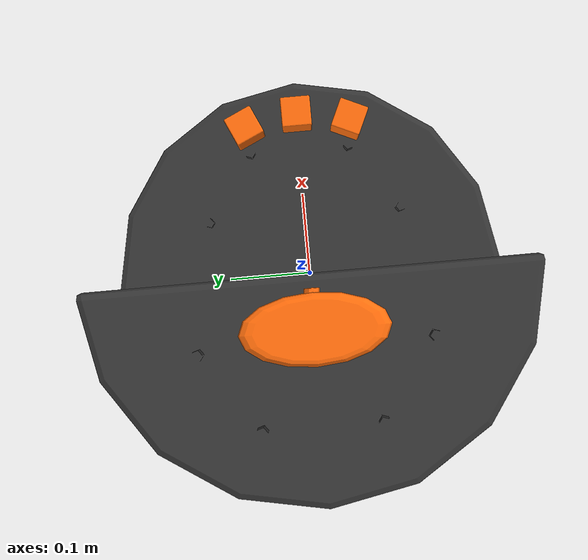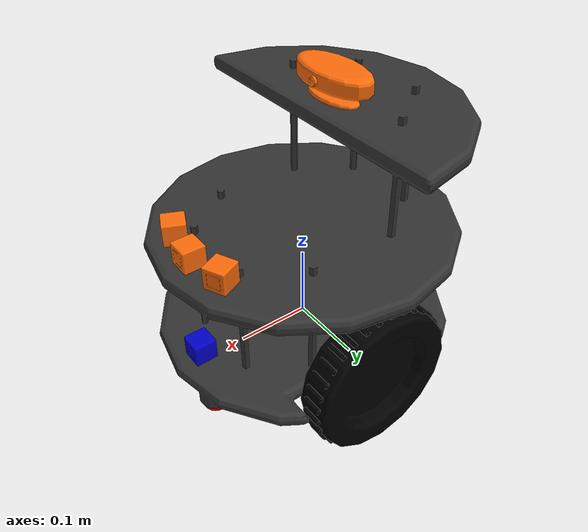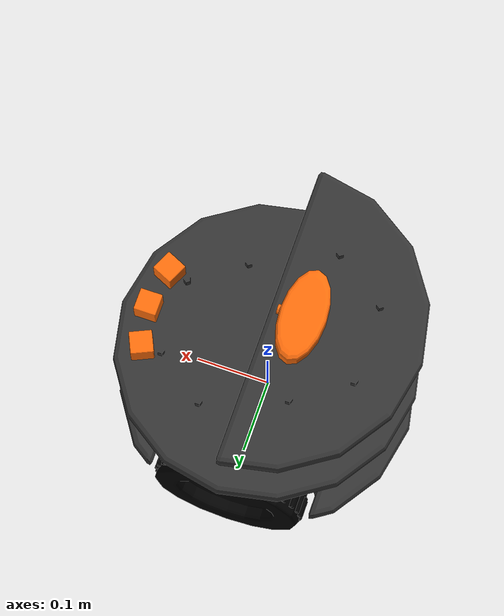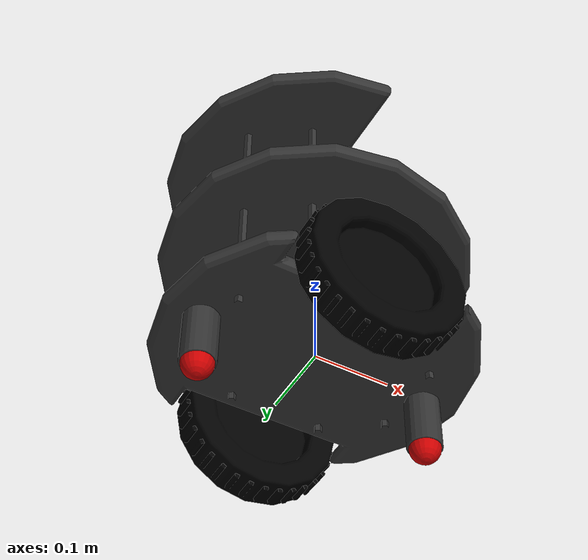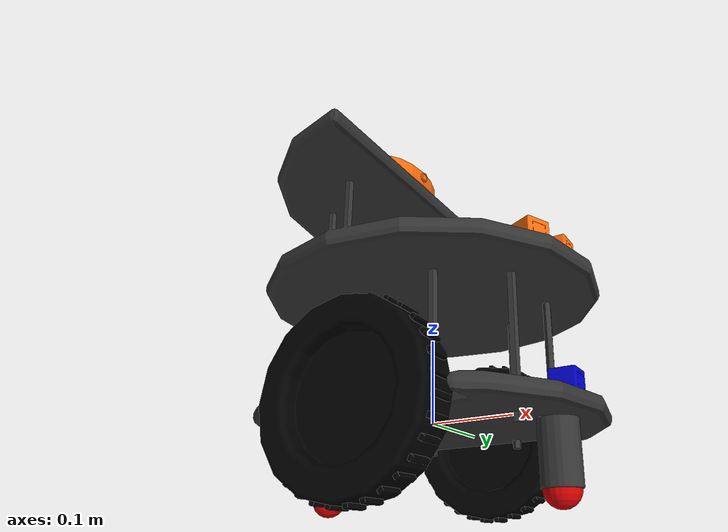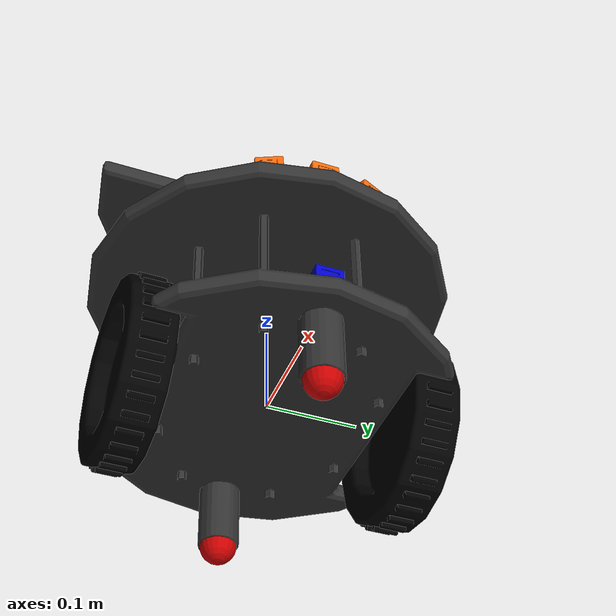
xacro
<?xml version="1.0"?>
<robot xmlns:xacro="http://www.ros.org/wiki/xacro" name="rhoa">

	<!-- Pour plus d'informations sur les fichiers .xacro, voir le lien ci-dessous : -->
	<!-- http://wiki.ros.org/urdf/Tutorials/Using%20Xacro%20to%20Clean%20Up%20a%20URDF%20File  -->

	<!-- Fichier fait notamment grace au lien suivant : -->
	<!-- https://www.generationrobots.com/blog/en/2015/02/robotic-simulation-scenarios-with-gazebo-and-ros/#SetupWorkspace -->

	<!-- INCLUDE -->
    <xacro:include filename="$(find rhoa_sim)/robots/macros/chassis.xacro" />
	<xacro:include filename="$(find rhoa_sim)/robots/macros/wheel.xacro" />
	<xacro:include filename="$(find rhoa_sim)/robots/macros/caster.xacro" />
	<xacro:include filename="$(find rhoa_sim)/robots/macros/camera.xacro" />
	<xacro:include filename="$(find rhoa_sim)/robots/macros/proximitySensor.xacro" />
	<xacro:include filename="$(find rhoa_sim)/robots/macros/lidar.xacro" />
	<xacro:include filename="$(find rhoa_sim)/robots/macros/diffDrive.xacro" />

	<xacro:include filename="$(find rhoa_sim)/materials/materials.xacro" />

	<!-- ==================================  ROBOTS PARAMETERS ================================= -->
	<xacro:property name="robot_namespace"          value="" />

	<!-- = CHASSIS = -->
	<xacro:property name="chassis_mesh"             value="package://rhoa_sim/meshes/chassis.dae" />
	<xacro:property name="chassis_material"         value="grey" />
	<xacro:property name="chassis_mass"             value="10" />
	<xacro:property name="chassis_length"           value="0.3" />
	<xacro:property name="chassis_radius"           value="0.2" />

	<!-- = WHEEL = -->
	<xacro:property name="wheel_mesh"               value="package://rhoa_sim/meshes/wheel.dae" />
	<xacro:property name="wheel_material"           value="black" />
	<xacro:property name="wheel_mass"               value="1" />
	<xacro:property name="wheel_length"             value="0.05" />
	<xacro:property name="wheel_radius"             value="0.1" />
	<xacro:property name="wheel_damping"            value="0.0" />

    <!-- Left wheel -->
	<xacro:property name="left_wheel_offset"        value="0.0 0.15 0.0" />

    <!-- Right wheel -->
	<xacro:property name="right_wheel_offset"       value="0.0 -0.15 0.0" />

    <!-- CRITICAL -->
    <!-- N'oubliez pas de specifier la distance qui separe les deux roues motrices -->
	<xacro:property name="wheel_separation"         value="0.30" />

	<!-- = CASTER = -->
	<xacro:property name="caster_mass"              value="0.1" />
	<xacro:property name="caster_radius"            value="0.02" />
	<xacro:property name="caster_material"          value="red" />

    <!-- Front caster -->
	<xacro:property name="front_caster_offset"      value="0.15 0.0 -0.08" />

    <!-- Back caster -->
	<xacro:property name="back_caster_offset"       value="-0.15 0.0 -0.08" />

	<!-- = CAMERA = -->
	<xacro:property name="camera_mesh"              value="package://rhoa_sim/meshes/camera.dae" />
	<xacro:property name="camera_material"          value="orange" />
	<xacro:property name="camera_mass"              value="0.1" />
	<xacro:property name="camera_size_x"            value="0.06" />
	<xacro:property name="camera_size_y"            value="0.11" />
	<xacro:property name="camera_size_z"            value="0.04" />
	<xacro:property name="camera_optic_offset"      value="0.032895 0.0 0.022207" />

	<!-- camera settings -->
	<xacro:property name="camera_visualize"         value="false" />
	<xacro:property name="camera_update_rate"       value="30.0" />
	<xacro:property name="camera_frame_rate"        value="30.0" />
	<xacro:property name="camera_horizontal_fov"    value="2" />
	<xacro:property name="camera_image_size_y"      value="1920" />
	<xacro:property name="camera_image_size_z"      value="1080" />
	<xacro:property name="camera_image_format"      value="R8G8B8" />
	<xacro:property name="camera_clip_near"         value="0.02" />
	<xacro:property name="camera_clip_far"          value="300" />
	<xacro:property name="camera_noise_type"        value="gaussian" />
	<xacro:property name="camera_noise_mean"        value="0.0" />
	<xacro:property name="camera_noise_stddev"      value="0.007" />
	<xacro:property name="camera_name"              value="camera" />
	<xacro:property name="camera_image_topic_name"  value="image_raw" />
	<xacro:property name="camera_info_topic_name"   value="camera_info" />

    <!-- Front camera -->
	<xacro:property name="front_camera_offset"    value="-0.044885 0.0 0.315" />
	<xacro:property name="front_camera_rpy"        value="0.0 0.0 0.0" />

	<!-- = PROXIMITY SENSOR = -->
	<xacro:property name="proximity_sensor_mesh"              value="package://rhoa_sim/meshes/sensor.dae" />
	<xacro:property name="proximity_sensor_material"          value="orange" />
	<xacro:property name="proximity_sensor_mass"              value="0.1" />
	<xacro:property name="proximity_sensor_size_x"            value="0.03" />
	<xacro:property name="proximity_sensor_size_y"            value="0.03" />
	<xacro:property name="proximity_sensor_size_z"            value="0.03" />
	<xacro:property name="proximity_sensor_optic_offset"      value="0.014 0 0.014971" />

	<!-- proximity sensor settings -->
	<xacro:property name="proximity_sensor_visualize"         value="true" />
	<xacro:property name="proximity_sensor_update_rate"       value="40" />
	<xacro:property name="proximity_sensor_scan_sample"       value="40" />
	<xacro:property name="proximity_sensor_scan_resolution"   value="1" />
	<xacro:property name="proximity_sensor_scan_min_angle"    value="0.00872665" />
	<xacro:property name="proximity_sensor_scan_max_angle"    value="-0.00872665" />
	<xacro:property name="proximity_sensor_range_min"         value="0.06" />
	<xacro:property name="proximity_sensor_range_max"         value="0.15" />
	<xacro:property name="proximity_sensor_range_resolution"  value="0.01" />
	<xacro:property name="proximity_sensor_noise_type"        value="gaussian" />
	<xacro:property name="proximity_sensor_noise_mean"        value="0.0" />
	<xacro:property name="proximity_sensor_noise_stddev"      value="0.01" />
	<xacro:property name="proximity_sensor_topic_name"        value="proximity_sensor" />
	<xacro:property name="proximity_sensor_noise_stddev"      value="0.01" />

	<!-- Front proximity sensor -->
	<xacro:property name="front_proximity_sensor_offset"      value="0.16265 0.0 0.16" />
	<xacro:property name="front_proximity_sensor_rpy"         value="0 0 0" />

	<!-- Left proximity sensor -->
	<xacro:property name="left_proximity_sensor_offset"       value="0.15282 0.053393 0.16" />
	<xacro:property name="left_proximity_sensor_rpy"          value="0 0 0.42738" />

	<!-- Right proximity sensor -->
	<xacro:property name="right_proximity_sensor_offset"      value="0.15282 -0.053393 0.16" />
	<xacro:property name="right_proximity_sensor_rpy"         value="0 0 -0.42738" />

	<!-- = LIDAR Settings = -->
	<xacro:property name="lidar_mesh"             value="package://rhoa_sim/meshes/sensor.dae" />
	<xacro:property name="lidar_material"         value="blue" />
	<xacro:property name="lidar_mass"             value="0.1" />
	<xacro:property name="lidar_size_x"           value="0.03" />
	<xacro:property name="lidar_size_y"           value="0.03" />
	<xacro:property name="lidar_size_z"           value="0.03" />
	<xacro:property name="lidar_optic_offset"     value="0.014 0 0.014971" />

	<xacro:property name="lidar_visualize"        value="false" />
	<xacro:property name="lidar_update_rate"      value="40" />
	<xacro:property name="lidar_scan_sample"      value="720" />
	<xacro:property name="lidar_scan_resolution"  value="1" />
	<xacro:property name="lidar_scan_min_angle"   value="${pi/2}" />
	<xacro:property name="lidar_scan_max_angle"   value="-${pi/2}" />
	<xacro:property name="lidar_range_min"        value="0.10" />
	<xacro:property name="lidar_range_max"        value="30.0" />
	<xacro:property name="lidar_range_resolution" value="0.01" />
	<xacro:property name="lidar_noise_type"       value="gaussian" />
	<xacro:property name="lidar_noise_mean"       value="0.0" />
	<xacro:property name="lidar_noise_stddev"     value="0.01" />
    <xacro:property name="lidar_topic_name"       value="lidar" />
	<xacro:property name="lidar_noise_stddev"     value="0.01" />

    <!-- Front LiDAR -->
	<xacro:property name="front_lidar_offset"     value="0.16265 0 0.01" />
	<xacro:property name="front_lidar_rpy"        value="0.0 0.0 0.0" />

	<!-- DRIVE -->
	<xacro:property name="drive_update_rate"       value="100" />
	<xacro:property name="drive_torque"            value="0.1" />
	<xacro:property name="command_topic"           value="cmd_vel" />
	<xacro:property name="odometry_topic"          value="odom" />

    <!-- ROS/Gazebo integration -->
	<gazebo>
		<plugin name="gazebo_ros_control" filename="libgazebo_ros_control.so">
		</plugin>
	</gazebo>

	<!-- ==================== INSTANCIATION DU ROBOT  ====================== -->

	<xacro:m_chassis_cylinder />

    <xacro:m_wheel prefix="right" offset="${right_wheel_offset}" />
    <xacro:m_wheel prefix="left" offset="${left_wheel_offset}" />

    <xacro:m_caster prefix="front" offset="${front_caster_offset}" />
	<xacro:m_caster prefix="back"  offset="${back_caster_offset}" />

    <xacro:m_camera prefix="front" offset="${front_camera_offset}" rpy="${front_camera_rpy}"/>

    <xacro:m_proximity_sensor prefix="front"  offset="${front_proximity_sensor_offset}" rpy="${front_proximity_sensor_rpy}"/>
    <xacro:m_proximity_sensor prefix="right"  offset="${right_proximity_sensor_offset}" rpy="${right_proximity_sensor_rpy}"/>
    <xacro:m_proximity_sensor prefix="left"  offset="${left_proximity_sensor_offset}" rpy="${left_proximity_sensor_rpy}"/>

    <xacro:m_lidar prefix="front"  offset="${front_lidar_offset}" rpy="${front_lidar_rpy}"/>

	<xacro:m_differential_drive />

</robot>

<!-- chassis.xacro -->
<robot xmlns:xacro="http://www.ros.org/wiki/xacro" name="rhoa">
	<!-- INCLUDE -->
    <xacro:include filename="$(find rhoa_sim)/robots/macros/inertia.xacro" />

    <!-- FICHIER MACRO -->
    <!-- Ce fichier definit des macros pour instancier un chassis -->

	<!-- ====================  CHASSIS MACRO  ====================== -->

    <!-- NOTE:-->

    <!-- En fonction de la forme de votre chassis, choisissez la bonne macro -->
    <!-- Deux macros sont disponibles pour le chassis-->
    <!--    * Une pour un chassis cylindrique, comme le robot-->
    <!--    * Une pour un chassis rectangulaire-->
    <!-- Il ne peut y avoir qu'un seul chassis par robot ! -->

	<!-- CHASSIS CYLINDRIQUE-->

    <!-- PARAMETRES-->

    <!-- A COPIER UNE FOIS DANS LE FICHIER -->

    <!-- MACRO -->
	<xacro:macro name="m_chassis_cylinder" >
		<link name="base_footprint" />

		<joint name="base_joint" type="fixed">
			<parent link="base_footprint"/>
			<child link="chassis"/>
			<origin rpy="0 0 0" xyz="0 0 0"/>
			<axis xyz="0 0 0" />
		</joint>

		<link name="chassis">
			<visual>
				<geometry>
					<mesh filename="${chassis_mesh}" />
				</geometry>
				<material name="${chassis_material}" />
			</visual>
			<collision>
				<geometry>
					<cylinder length="${chassis_length}" radius="${chassis_radius}" />
				</geometry>
				<origin rpy="0 0 0" xyz="0 0 ${chassis_length/2}"/>
			</collision>
			<inertial>
				<origin xyz="0 0 0" rpy="0 0 0" />
				<pose xyz="0 0 ${chassis_length/2}" rpy="0 0 0" />
				<mass value="${chassis_mass}" />
				<xacro:box_inertia m="${chassis_mass}" x="${chassis_radius}" y="${chassis_radius}" z="${chassis_length}"/>
			</inertial>
		</link>
		<gazebo reference="chassis">
			<material>Gazebo/Grey</material>
		</gazebo>
	</xacro:macro>

	<!-- CHASSIS RECTANGULAIRE-->

    <!-- PARAMETRES-->

    <!-- A COPIER UNE FOIS DANS LE FICHIER -->

    <!-- MACRO -->
	<xacro:macro name="m_chassis_box" >
		<link name="base_footprint" />

		<joint name="base_joint" type="fixed">
			<parent link="base_footprint"/>
			<child link="chassis"/>
			<origin rpy="0 0 0" xyz="0 0 0"/>
			<axis xyz="0 0 0" />
		</joint>

		<link name="chassis">
			<visual>
				<geometry>
					<mesh filename="${chassis_mesh}" />
				</geometry>
				<material name="${chassis_material}" />
			</visual>
			<collision>
				<geometry>
					<box size="${chassis_size_x} ${chassis_size_y} ${chassis_size_z}"/>
				</geometry>
				<origin rpy="0 0 0" xyz="0 0 ${chassis_length/2}"/>
			</collision>
			<inertial>
				<origin xyz="0 0 0" rpy="0 0 0" />
				<pose xyz="0 0 ${chassis_length/2}" rpy="0 0 0" />
				<mass value="${chassis_mass}" />
				<xacro:box_inertia m="${chassis_mass}" x="${chassis_size_x}" y="${chassis_size_y}" z="${chassis_size_z}"/>
			</inertial>
		</link>
		<gazebo reference="chassis">
			<material>Gazebo/Grey</material>
		</gazebo>
	</xacro:macro>

</robot>

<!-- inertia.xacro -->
<robot xmlns:xacro="http://www.ros.org/wiki/xacro" name="rhoa">
    <!-- FICHIER MACRO -->
    <!-- Ce fichier definit des macros pour calculer les moments d'inertie-->

	<!-- ==================================  INERTIA MACROS  ================================= -->
	<xacro:macro name="cylinder_inertia" params="m r h">
		<inertia  ixx="${m*(3*r*r+h*h)/12}" ixy = "0" ixz = "0"
			iyy="${m*(3*r*r+h*h)/12}" iyz = "0"
			izz="${m*r*r/2}" />
	</xacro:macro>

	<xacro:macro name="box_inertia" params="m x y z">
		<inertia  ixx="${m*(y*y+z*z)/12}" ixy = "0" ixz = "0"
			iyy="${m*(x*x+z*z)/12}" iyz = "0"
			izz="${m*(x*x+z*z)/12}" />
	</xacro:macro>

	<xacro:macro name="sphere_inertia" params="m r">
		<inertia  ixx="${2*m*r*r/5}" ixy = "0" ixz = "0"
			iyy="${2*m*r*r/5}" iyz = "0"
			izz="${2*m*r*r/5}" />
	</xacro:macro>

	<xacro:macro name="default_inertia" params="mass">
		<mass value="${mass}" />
		<inertia ixx="1.0" ixy="0.0" ixz="0.0"
			iyy="1.0" iyz="0.0"
			izz="1.0" />
	</xacro:macro>

</robot>

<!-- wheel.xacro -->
<robot xmlns:xacro="http://www.ros.org/wiki/xacro" name="rhoa">
	<!-- INCLUDE -->
	<xacro:include filename="$(find rhoa_sim)/robots/macros/inertia.xacro" />

    <!-- FICHIER MACRO -->
    <!-- Ce fichier definit des macros pour instancier une roue (ATTENTION: IL NE PEUT Y AVOIR QUE DEUX ROUES MOTRICES)  -->

  <!-- ====================  WHEEL MACRO  ====================== -->

    <!-- NOTE:-->
    <!-- Pour les parametres, n'oubliez pas de remplacer $PREFIX par le prefix specifie lors de l'instanciation de la macro -->

    <!-- PARAMETRES-->

    <!-- A COPIER UNE FOIS DANS LE FICHIER -->

    <!-- CRITICAL -->
    <!-- N'oubliez pas de specifier la distance qui separe les deux roues motrices -->

    <!-- A COPIER POUR CHAQUE INSTACIATION, en remplacant $PREFIX par des valeurs differentes pour chaque instanciation(Par exemple: front, left, ...) -->

	<xacro:macro name="m_wheel" params="prefix offset">
		<link name="${prefix}_wheel">
			<visual>
				<geometry>
					<mesh filename="${wheel_mesh}" />
				</geometry>
				<material name="${wheel_material}" />
			</visual>
			<collision>
				<geometry>
					<cylinder length="${wheel_length}" radius="${wheel_radius}" />
				</geometry>
				<origin rpy="1.5708 0 0" xyz="0 0 0"/>
			</collision>
			<inertial>
				<origin rpy="1.5708 0 0" xyz="0 0 0"/>
				<mass value="${wheel_mass}" />
				<xacro:cylinder_inertia m="${wheel_mass}" r="${wheel_radius}" h="${wheel_length}"/>
			</inertial>
		</link>
		<joint name="${prefix}_wheel_hinge" type="continuous">
			<parent link="chassis" />
			<child link="${prefix}_wheel" />
			<origin rpy="0 0 0" xyz="${offset}"/>
			<axis xyz="0 1 0" />
			<dynamics damping="${wheel_damping}" />
		</joint>
		<transmission name="${prefix}_wheel_transmission">
			<type>transmission_interface/SimpleTransmission</type>
			<joint name="${prefix}_wheel_hinge">
				<hardwareInterface>EffortJointInterface</hardwareInterface>
			</joint>
			<actuator name="${prefix}_wheel_joint_motor">
				<hardwareInterface>EffortJointInterface</hardwareInterface>
				<mechanicalReduction>1</mechanicalReduction>
				<motorTorqueConstant>1</motorTorqueConstant>
			</actuator>
		</transmission>
		<gazebo reference="${prefix}_wheel">
			<mu1 value="1.0"/>
			<mu2 value="1.0"/>
			<kp  value="10000000.0" />
			<kd  value="1.0" />
			<fdir1 value="1 0 0"/>
			<material>Gazebo/Grey</material>
		</gazebo>
	</xacro:macro>

</robot>

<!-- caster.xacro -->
<robot xmlns:xacro="http://www.ros.org/wiki/xacro" name="rhoa">
	<!-- INCLUDE -->
	<xacro:include filename="$(find rhoa_sim)/robots/macros/inertia.xacro" />

    <!-- FICHIER MACRO -->
    <!-- Ce fichier definit des macros pour instancier une roulette (un "caster" en anglais) -->

  <!-- ====================  CASTER MACRO  ====================== -->

    <!-- NOTE:-->
    <!-- Pour les parametres, n'oubliez pas de remplacer $PREFIX par le prefix specifie lors de l'instanciation de la macro -->

    <!-- PARAMETRES-->

    <!-- A COPIER UNE FOIS DANS LE FICHIER -->

    <!-- A COPIER POUR CHAQUE INSTACIATION, en remplacant $PREFIX par des valeurs differentes pour chaque instanciation(Par exemple: front, left, ...) -->

	<xacro:macro name="m_caster" params="prefix offset">
		<link name="${prefix}_caster">
			<visual>
				<geometry>
					<sphere radius="${caster_radius}" />
				</geometry>
				<material name="${caster_material}" />
			</visual>
			<collision>
				<geometry>
					<sphere radius="${caster_radius}" />
				</geometry>
			</collision>
			<inertial>
				<origin rpy="0 0 0" xyz="0 0 0"/>
				<mass value="${caster_mass}" />
				<xacro:sphere_inertia m="${caster_mass}" r="${caster_radius}"/>
			</inertial>
		</link>
		<joint name="${prefix}_caster_fixation" type="fixed">
			<parent link="chassis" />
			<child link="${prefix}_caster" />
			<origin rpy="0 0 0" xyz="${offset}"/>
			<axis xyz="0 0 0" />
		</joint>
		<gazebo reference="${prefix}_caster">
			<mu1 value="0.0" />
			<mu2 value="0.0" />
			<material>Gazebo/Red</material>
		</gazebo>
	</xacro:macro>
</robot>

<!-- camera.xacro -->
<robot xmlns:xacro="http://www.ros.org/wiki/xacro" name="rhoa">
	<!-- INCLUDE -->
	<xacro:include filename="$(find rhoa_sim)/robots/macros/inertia.xacro" />

    <!-- FICHIER MACRO -->
    <!-- Ce fichier definit des macros pour instancier une camera -->

  <!-- ====================  CAMERA MACRO  ====================== -->

    <!-- NOTE:-->
    <!-- Pour les parametres, n'oubliez pas de remplacer $PREFIX par le prefix specifie lors de l'instanciation de la macro -->

    <!-- PARAMETRES-->

    <!-- A COPIER UNE FOIS DANS LE FICHIER -->

    <!-- A COPIER POUR CHAQUE INSTACIATION, en remplacant $PREFIX par des valeurs differentes pour chaque instanciation(Par exemple: front, left, ...) -->

    <!-- MACRO -->
	<xacro:macro name="m_camera" params="prefix offset rpy">
		<link name="${prefix}_camera_anchor" />
		<link name="${prefix}_camera">
			<visual>
				<geometry>
					<mesh filename="${camera_mesh}" />
				</geometry>
				<material name="${camera_material}" />
			</visual>
			<collision>
				<geometry>
					<box size="${camera_size_x} ${camera_size_y} ${camera_size_z}"/>
				</geometry>
                <origin rpy="${rpy}" xyz="0 0 ${camera_size_z/2}"/>
			</collision>
			<inertial>
				<origin xyz="0 0 0" rpy="0 0 0" />
				<mass value="${camera_mass}" />
				<xacro:box_inertia m="${camera_mass}" x="${camera_size_x}"  y="${camera_size_y}" z="${camera_size_z}"/>
			</inertial>
		</link>
		<joint name="${prefix}_camera_fixation" type="fixed">
			<parent link="chassis" />
			<child link="${prefix}_camera" />
			<origin rpy="${rpy}" xyz="${offset}"/>
			<axis xyz="0 0 0" />
		</joint>
		<joint name="${prefix}_camera_optic_fixation" type="fixed">
			<parent link="${prefix}_camera" />
			<child link="${prefix}_camera_anchor" />
			<origin rpy="0 0 0" xyz="${camera_optic_offset}"/>
			<axis xyz="0 0 0" />
		</joint>
		<gazebo reference="${prefix}_camera">
			<material>Gazebo/Orange</material>
		</gazebo>
		<gazebo reference="${prefix}_camera_anchor">
			<sensor type="camera" name="${prefix}_camera">
				<visualize>${camera_visualize}</visualize>
				<update_rate>${camera_update_rate}</update_rate>
				<camera name="head">
					<horizontal_fov>${camera_horizontal_fov}</horizontal_fov>
					<image>
						<size_y>${camera_image_size_y}</size_y>
						<size_z>${camera_image_size_z}</size_z>
						<format>${camera_image_format}</format>
					</image>
					<clip>
						<near>${camera_clip_near}</near>
						<far>${camera_clip_far}</far>
					</clip>
					<noise>
						<type>${camera_noise_type}</type>
						<mean>${camera_noise_mean}</mean>
						<stddev>${camera_noise_stddev}</stddev>
					</noise>
				</camera>
				<plugin name="camera_controller" filename="libgazebo_ros_camera.so">
					<alwaysOn>true</alwaysOn>
					<updateRate>${camera_frame_rate}</updateRate>
                    <cameraName>${camera_name}/${prefix}</cameraName>
                    <imageTopicName>${camera_image_topic_name}</imageTopicName>
					<cameraInfoTopicName>${camera_info_topic_name}</cameraInfoTopicName>
                    <frameName>${prefix}_${camera_name}</frameName>
					<hackBaseline>0.07</hackBaseline>
					<distortionK1>0.0</distortionK1>
					<distortionK2>0.0</distortionK2>
					<distortionK3>0.0</distortionK3>
					<distortionT1>0.0</distortionT1>
					<distortionT2>0.0</distortionT2>
				</plugin>
			</sensor>
		</gazebo>
	</xacro:macro>
</robot>

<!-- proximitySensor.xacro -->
<robot xmlns:xacro="http://www.ros.org/wiki/xacro" name="rhoa">
	<!-- INCLUDE -->
	<xacro:include filename="$(find rhoa_sim)/robots/macros/inertia.xacro" />

    <!-- FICHIER MACRO -->
    <!-- Ce fichier definit des macros pour instancier un capteur -->

  <!-- ====================  PROXIMITY SENSOR MACRO  ====================== -->

    <!-- NOTE:-->
    <!-- Pour les parametres, n'oubliez pas de remplacer $PREFIX par le prefix specifie lors de l'instanciation de la macro -->

    <!-- PARAMETRES-->

    <!-- A COPIER UNE FOIS DANS LE FICHIER -->

    <!-- A COPIER POUR CHAQUE INSTACIATION, en remplacant $PREFIX par des valeurs differentes pour chaque instanciation(Par exemple: front, left, ...) -->

	<xacro:macro name="m_proximity_sensor" params="prefix offset rpy">
		<link name="${prefix}_proximity_sensor_anchor" />
		<link name="${prefix}_proximity_sensor">
			<visual>
				<geometry>
					<mesh filename="${proximity_sensor_mesh}" />
				</geometry>
				<material name="${proximity_sensor_material}" />
			</visual>
			<inertial>
				<origin xyz="0 0 0" rpy="0 0 0" />
				<mass value="${proximity_sensor_mass}" />
				<xacro:box_inertia m="${proximity_sensor_mass}" x="${proximity_sensor_size_x}"  y="${proximity_sensor_size_y}" z="${proximity_sensor_size_z}"/>
			</inertial>
		</link>
		<joint name="${prefix}_proximity_sensor_fixation" type="fixed">
			<parent link="chassis" />
			<child link="${prefix}_proximity_sensor" />
			<origin rpy="${rpy}" xyz="${offset}"/>
			<axis xyz="0 0 0" />
		</joint>
		<joint name="${prefix}_proximity_sensor_anchor_fixation" type="fixed">
			<parent link="${prefix}_proximity_sensor" />
			<child link="${prefix}_proximity_sensor_anchor" />
			<origin rpy="0 0 0" xyz="${proximity_sensor_optic_offset}"/>
			<axis xyz="0 0 0" />
		</joint>
		<gazebo reference="${prefix}_proximity_sensor_anchor">
			<sensor type="ray" name="${prefix}_proximity_sensor">
				<visualize>${proximity_sensor_visualize}</visualize>
				<update_rate>${proximity_sensor_update_rate}</update_rate>
				<ray>
					<scan>
						<horizontal>
							<samples>${proximity_sensor_scan_sample}</samples>
							<resolution>${proximity_sensor_scan_resolution}</resolution>
							<min_angle>${proximity_sensor_scan_min_angle}</min_angle>
							<max_angle>${proximity_sensor_scan_max_angle}</max_angle>
						</horizontal>
					</scan>
					<range>
						<min>${proximity_sensor_range_min}</min>
						<max>${proximity_sensor_range_max}</max>
						<resolution>${proximity_sensor_range_resolution}</resolution>
					</range>
					<noise>
						<type>${proximity_sensor_noise_type}</type>
						<mean>${proximity_sensor_noise_mean}</mean>
						<stddev>${proximity_sensor_noise_stddev}</stddev>
					</noise>
				</ray>
				<plugin name="gazebo_ros_head_hokuyo_controller" filename="libgazebo_ros_laser.so">
                    <topicName>${proximity_sensor_topic_name}/${prefix}</topicName>
					<frameName>${prefix}_proximity_sensor</frameName>
				</plugin>
			</sensor>
		</gazebo>
		<gazebo reference="${prefix}_proximity_sensor">
			<material>Gazebo/Orange</material>
		</gazebo>
	</xacro:macro>

</robot>

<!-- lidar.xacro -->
<robot xmlns:xacro="http://www.ros.org/wiki/xacro" name="rhoa">
	<!-- INCLUDE -->
	<xacro:include filename="$(find rhoa_sim)/robots/macros/inertia.xacro" />

    <!-- FICHIER MACRO -->
    <!-- Ce fichier definit des macros pour instancier un lidar -->

  <!-- ====================  LIDAR MACRO  ====================== -->

    <!-- NOTE:-->
    <!-- Pour les parametres, n'oubliez pas de remplacer $PREFIX par le prefix specifie lors de l'instanciation de la macro -->

    <!-- PARAMETRES-->

    <!-- A COPIER UNE FOIS DANS LE FICHIER -->

    <!-- A COPIER POUR CHAQUE INSTACIATION, en remplacant $PREFIX par des valeurs differentes pour chaque instanciation(Par exemple: front, left, ...) -->
	<xacro:macro name="m_lidar" params="prefix offset rpy">
        <link name="${prefix}_lidar_anchor" />
		<link name="${prefix}_lidar">
			<visual>
				<geometry>
					<mesh filename="${lidar_mesh}" />
				</geometry>
				<material name="${lidar_material}" />
			</visual>
			<inertial>
				<origin xyz="0 0 0" rpy="0 0 0" />
				<mass value="${lidar_mass}" />
				<xacro:box_inertia m="${lidar_mass}" x="${lidar_size_x}"  y="${lidar_size_y}" z="${lidar_size_z}"/>
			</inertial>
		</link>
		<joint name="${prefix}_lidar_fixation" type="fixed">
			<parent link="chassis" />
			<child link="${prefix}_lidar" />
            <origin rpy="${rpy}" xyz="${offset}"/>
			<axis xyz="0 0 0" />
		</joint>
		<joint name="${prefix}_lidar_anchor_fixation" type="fixed">
			<parent link="${prefix}_lidar" />
			<child link="${prefix}_lidar_anchor" />
			<origin rpy="0 0 0" xyz="${lidar_optic_offset}"/>
			<axis xyz="0 0 0" />
		</joint>
		<gazebo reference="${prefix}_lidar_anchor">
			<sensor type="ray" name="${prefix}_lidar">
				<visualize>${lidar_visualize}</visualize>
				<update_rate>${lidar_update_rate}</update_rate>
				<ray>
					<scan>
						<horizontal>
							<samples>${lidar_scan_sample}</samples>
							<resolution>${lidar_scan_resolution}</resolution>
							<min_angle>${lidar_scan_min_angle}</min_angle>
							<max_angle>${lidar_scan_max_angle}</max_angle>
						</horizontal>
					</scan>
					<range>
						<min>${lidar_range_min}</min>
						<max>${lidar_range_max}</max>
						<resolution>${lidar_range_resolution}</resolution>
					</range>
					<noise>
						<type>${lidar_noise_type}</type>
						<mean>${lidar_noise_mean}</mean>
						<stddev>${lidar_noise_stddev}</stddev>
					</noise>
				</ray>
				<plugin name="gazebo_ros_head_hokuyo_controller" filename="libgazebo_ros_laser.so">
                    <topicName>${lidar_topic_name}/${prefix}</topicName>
					<frameName>${prefix}_lidar</frameName>
				</plugin>
			</sensor>
		</gazebo>
		<gazebo reference="${prefix}_lidar">
			<material>Gazebo/Blue</material>
		</gazebo>
	</xacro:macro>
</robot>

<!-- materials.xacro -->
<!-- Definition of the materials used -->
<robot name="materials" xmlns:xacro="http://www.ros.org/wiki/xacro">
	<material name="black">
	  <color rgba="0.0 0.0 0.0 1.0"/>
	</material>

	<material name="blue">
	  <color rgba="0.0 0.0 0.8 1.0"/>
	</material>

	<material name="green">
	  <color rgba="0.0 0.8 0.0 1.0"/>
	</material>

	<material name="grey">
	  <color rgba="0.2 0.2 0.2 1.0"/>
	</material>

	<material name="orange">
	  <color rgba="${255/255} ${108/255} ${10/255} 1.0"/>
	</material>

	<material name="brown">
	  <color rgba="${222/255} ${207/255} ${195/255} 1.0"/>
	</material>

	<material name="red">
	  <color rgba="0.8 0.0 0.0 1.0"/>
	</material>

	<material name="white">
	  <color rgba="1.0 1.0 1.0 1.0"/>
	</material>
</robot>
